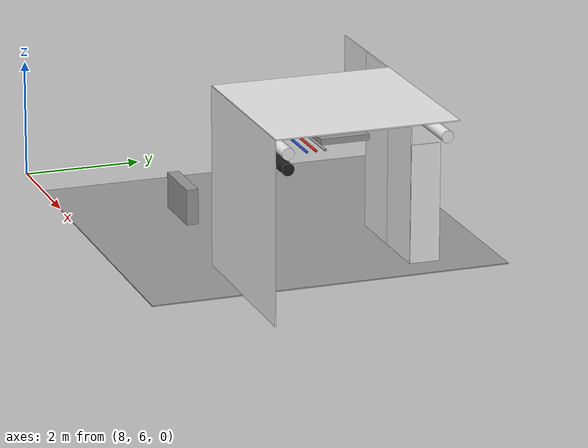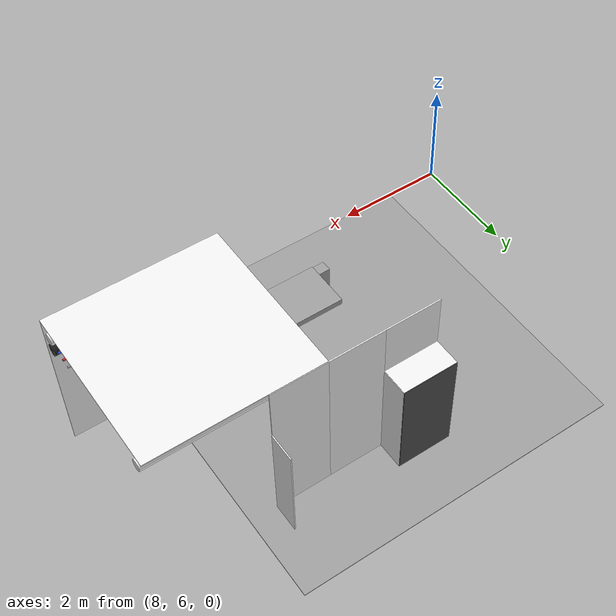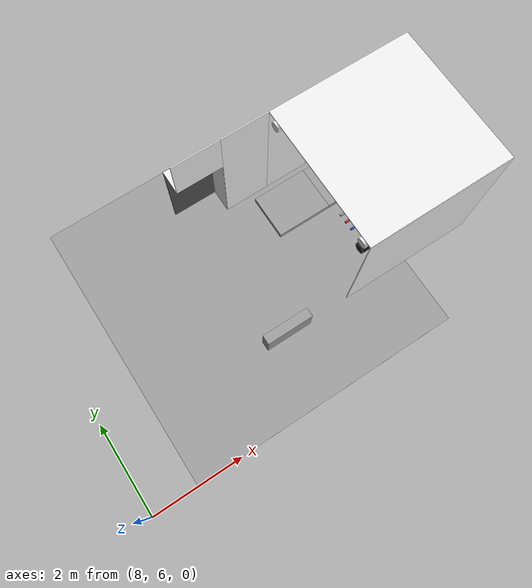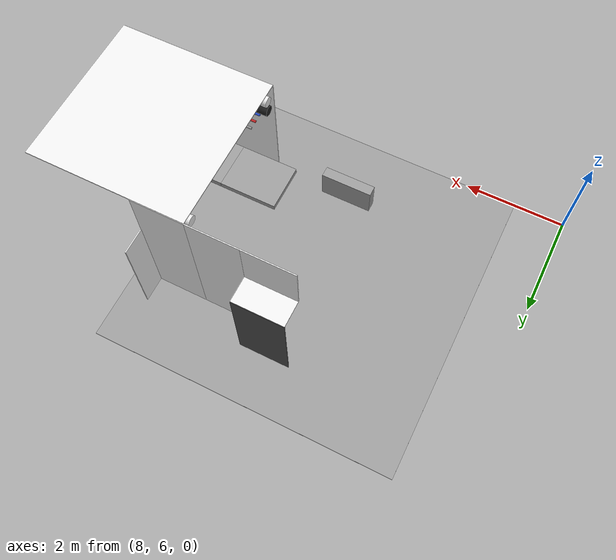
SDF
<sdf version="1.6">
 <world name="default">
  <model name="ceiling_1_4_3_2_1">
   <pose>13.0 9.0 2.55 0.0 0.0 -1.57</pose>
   <link name="link_1">
    <visual name="visual">
     <geometry><box><size>0.8 1 0.1</size></box></geometry>
     <material>
      <script><uri>file://media/materials/scripts/gazebo.material</uri><name>Gazebo/Grey</name></script>
     </material>
    </visual>
    <collision name="collision"><geometry><box><size>0.8 1 0.1</size></box></geometry></collision>
   </link>
   <static>1</static>
  </model>
  <model name="wall_bottom_4_3_0_1">
   <static>1</static>
   <pose>12.0 9.0 0.0 0.0 0.0 -1.57</pose>
   <link name="link">
    <collision name="collision"><geometry><box><size>6.0 6.0 0.02</size></box></geometry></collision>
    <visual name="visual">
     <material>
      <script><name>Gazebo/Grey</name><uri>file://media/materials/scripts/gazebo.material</uri></script>
     </material>
     <geometry><box><size>6.0 6.0 0.02</size></box></geometry>
    </visual>
   </link>
  </model>
  <model name="wall_left_front_left_4_3_0_1">
   <static>1</static>
   <pose>13.0 10.5 1.5 0.0 0.0 0.0</pose>
   <link name="link">
    <collision name="collision"><geometry><box><size>1.0 0.02 3.0</size></box></geometry></collision>
    <visual name="visual">
     <material>
      <script><name>Gazebo/White</name><uri>file://media/materials/scripts/gazebo.material</uri></script>
     </material>
     <geometry><box><size>1.0 0.02 3.0</size></box></geometry>
    </visual>
   </link>
  </model>
  <model name="wall_left_front_up_4_3_0_1">
   <static>1</static>
   <pose>12.0 10.5 2.5 0.0 0.0 0.0</pose>
   <link name="link">
    <collision name="collision"><geometry><box><size>1.0 0.02 1.0</size></box></geometry></collision>
    <visual name="visual">
     <material>
      <script><name>Gazebo/White</name><uri>file://media/materials/scripts/gazebo.material</uri></script>
     </material>
     <geometry><box><size>1.0 0.02 1.0</size></box></geometry>
    </visual>
   </link>
  </model>
  <model name="wall_left_inside_back_4_3_0_1">
   <static>1</static>
   <pose>12.0 11.0 1.0 0.0 0.0 0.0</pose>
   <link name="link">
    <collision name="collision"><geometry><box><size>1 0.02 2</size></box></geometry></collision>
    <visual name="visual">
     <material>
      <script><name>Gazebo/DarkGrey</name><uri>file://media/materials/scripts/gazebo.material</uri></script>
     </material>
     <geometry><box><size>1 0.02 2</size></box></geometry>
    </visual>
   </link>
  </model>
  <model name="wall_left_inside_left_4_3_0_1">
   <static>1</static>
   <pose>12.5 10.75 1.0 0.0 0.0 -1.57</pose>
   <link name="link">
    <collision name="collision"><geometry><box><size>0.5 0.02 2</size></box></geometry></collision>
    <visual name="visual">
     <material>
      <script><name>Gazebo/White</name><uri>file://media/materials/scripts/gazebo.material</uri></script>
     </material>
     <geometry><box><size>0.5 0.02 2</size></box></geometry>
    </visual>
   </link>
  </model>
  <model name="wall_left_inside_top_4_3_0_1">
   <static>1</static>
   <pose>12.0 10.75 2.0 1.57 0.0 0.0</pose>
   <link name="link">
    <collision name="collision"><geometry><box><size>1 0.02 0.5</size></box></geometry></collision>
    <visual name="visual">
     <material>
      <script><name>Gazebo/White</name><uri>file://media/materials/scripts/gazebo.material</uri></script>
     </material>
     <geometry><box><size>1 0.02 0.5</size></box></geometry>
    </visual>
   </link>
  </model>
  <model name="panel_4_3_0_1">
   <static>1</static>
   <pose>12.0 7.5 0.66 0.0 0.0 -1.57</pose>
   <link name="link">
    <collision name="collision"><geometry><box><size>0.2 1 0.6</size></box></geometry></collision>
    <visual name="visual">
     <material>
      <script><name>Gazebo/Grey</name><uri>file://media/materials/scripts/gazebo.material</uri></script>
     </material>
     <geometry><box><size>0.2 1 0.6</size></box></geometry>
    </visual>
   </link>
  </model>
  <model name="wall_right_5_3_0_1">
   <static>1</static>
   <pose>15.0 7.5 1.5 0.0 0.0 0.0</pose>
   <link name="link">
    <collision name="collision"><geometry><box><size>3.0 0.02 3.0</size></box></geometry></collision>
    <visual name="visual">
     <material>
      <script><name>Gazebo/White</name><uri>file://media/materials/scripts/gazebo.material</uri></script>
     </material>
     <geometry><box><size>3.0 0.02 3.0</size></box></geometry>
    </visual>
   </link>
  </model>
  <model name="wall_top_5_3_0_1">
   <static>1</static>
   <pose>15.0 9.0 3.0 1.57 0.0 -1.57</pose>
   <link name="link">
    <collision name="collision"><geometry><box><size>3.0 0.02 3.0</size></box></geometry></collision>
    <visual name="visual">
     <material>
      <script><name>Gazebo/White</name><uri>file://media/materials/scripts/gazebo.material</uri></script>
     </material>
     <geometry><box><size>3.0 0.02 3.0</size></box></geometry>
    </visual>
   </link>
  </model>
  <model name="ceiling_1_5_3_0_1">
   <pose>15.0 9.0 2.55 0.0 0.0 -1.57</pose>
   <link name="link_1">
    <visual name="visual">
     <geometry><box><size>0.8 1 0.1</size></box></geometry>
     <material>
      <script><uri>file://media/materials/scripts/gazebo.material</uri><name>Gazebo/Grey</name></script>
     </material>
    </visual>
    <collision name="collision"><geometry><box><size>0.8 1 0.1</size></box></geometry></collision>
   </link>
   <static>1</static>
  </model>
  <model name="ceiling_1_5_3_1_1">
   <pose>14.0 9.0 2.55 0.0 0.0 -1.57</pose>
   <link name="link_1">
    <visual name="visual">
     <geometry><box><size>0.8 1 0.1</size></box></geometry>
     <material>
      <script><uri>file://media/materials/scripts/gazebo.material</uri><name>Gazebo/Grey</name></script>
     </material>
    </visual>
    <collision name="collision"><geometry><box><size>0.8 1 0.1</size></box></geometry></collision>
   </link>
   <static>1</static>
  </model>
  <model name="white_pipe_left_5_3_0_1">
   <static>1</static>
   <pose>15.0 9.0 2.76 0.0 0.0 -1.57</pose>
   <link name="link_0">
    <visual name="visual">
     <pose>-1.3 0 0 1.57 0 0</pose>
     <geometry><cylinder><radius>0.1</radius><length>3.0</length></cylinder></geometry>
     <material>
      <script><uri>file://media/materials/scripts/gazebo.material</uri><name>Gazebo/White</name></script>
     </material>
    </visual>
    <collision name="collision">
     <pose>-1.3 0 0 1.57 0 0</pose>
     <geometry><cylinder><radius>0.1</radius><length>3.0</length></cylinder></geometry>
    </collision>
   </link>
  </model>
  <model name="white_pipe_right_5_3_0_1">
   <static>1</static>
   <pose>15.0 9.0 2.76 0.0 0.0 -1.57</pose>
   <link name="link_0">
    <visual name="visual">
     <pose>1.3 0 0 1.57 0 0</pose>
     <geometry><cylinder><radius>0.1</radius><length>3.0</length></cylinder></geometry>
     <material>
      <script><uri>file://media/materials/scripts/gazebo.material</uri><name>Gazebo/White</name></script>
     </material>
    </visual>
    <collision name="collision">
     <pose>1.3 0 0 1.57 0 0</pose>
     <geometry><cylinder><radius>0.1</radius><length>3.0</length></cylinder></geometry>
    </collision>
   </link>
  </model>
  <model name="black_pipe_right_5_3_0_1">
   <static>1</static>
   <pose>15.0 9.0 2.76 0.0 0.0 -1.57</pose>
   <link name="link_0">
    <visual name="visual">
     <pose>1.3 0 -0.25 1.57 0 0</pose>
     <geometry><cylinder><radius>0.1</radius><length>3.0</length></cylinder></geometry>
     <material>
      <script><uri>file://media/materials/scripts/gazebo.material</uri><name>Gazebo/Black</name></script>
     </material>
    </visual>
    <collision name="collision">
     <pose>1.3 0 -0.25 1.57 0 0</pose>
     <geometry><cylinder><radius>0.1</radius><length>3.0</length></cylinder></geometry>
    </collision>
   </link>
  </model>
  <model name="grey_pipe_right_5_3_0_1">
   <static>1</static>
   <pose>15.0 9.0 2.76 0.0 0.0 -1.57</pose>
   <link name="link_0">
    <visual name="visual">
     <pose>0.7 0 0 1.57 0 0</pose>
     <geometry><cylinder><radius>0.02</radius><length>3.0</length></cylinder></geometry>
     <material>
      <script><uri>file://media/materials/scripts/gazebo.material</uri><name>Gazebo/Grey</name></script>
     </material>
    </visual>
    <collision name="collision">
     <pose>0.7 0 0 1.57 0 0</pose>
     <geometry><cylinder><radius>0.02</radius><length>3.0</length></cylinder></geometry>
    </collision>
   </link>
  </model>
  <model name="red_pipe_right_5_3_0_1">
   <static>1</static>
   <pose>15.0 9.0 2.76 0.0 0.0 -1.57</pose>
   <link name="link_0">
    <visual name="visual">
     <pose>0.85 0 0 1.57 0 0</pose>
     <geometry><cylinder><radius>0.02</radius><length>3.0</length></cylinder></geometry>
     <material>
      <script><uri>file://media/materials/scripts/gazebo.material</uri><name>Gazebo/Red</name></script>
     </material>
    </visual>
    <collision name="collision">
     <pose>0.85 0 0 1.57 0 0</pose>
     <geometry><cylinder><radius>0.02</radius><length>3.0</length></cylinder></geometry>
    </collision>
   </link>
  </model>
  <model name="blue_pipe_right_5_3_0_1">
   <static>1</static>
   <pose>15.0 9.0 2.76 0.0 0.0 -1.57</pose>
   <link name="link_0">
    <visual name="visual">
     <pose>1 0 0 1.57 0 0</pose>
     <geometry><cylinder><radius>0.02</radius><length>3.0</length></cylinder></geometry>
     <material>
      <script><uri>file://media/materials/scripts/gazebo.material</uri><name>Gazebo/Blue</name></script>
     </material>
    </visual>
    <collision name="collision">
     <pose>1 0 0 1.57 0 0</pose>
     <geometry><cylinder><radius>0.02</radius><length>3.0</length></cylinder></geometry>
    </collision>
   </link>
  </model>
  <model name="wall_left_front_right_5_3_0_1">
   <static>1</static>
   <pose>14.0 10.5 1.5 0.0 0.0 0.0</pose>
   <link name="link">
    <collision name="collision"><geometry><box><size>1.0 0.02 3.0</size></box></geometry></collision>
    <visual name="visual">
     <material>
      <script><name>Gazebo/White</name><uri>file://media/materials/scripts/gazebo.material</uri></script>
     </material>
     <geometry><box><size>1.0 0.02 3.0</size></box></geometry>
    </visual>
   </link>
  </model>
  <model name="wall_left_inside_right_5_3_0_1">
   <static>1</static>
   <pose>14.5 10.75 1.0 0.0 0.0 -1.57</pose>
   <link name="link">
    <collision name="collision"><geometry><box><size>0.5 0.02 2</size></box></geometry></collision>
    <visual name="visual">
     <material>
      <script><name>Gazebo/White</name><uri>file://media/materials/scripts/gazebo.material</uri></script>
     </material>
     <geometry><box><size>0.5 0.02 2</size></box></geometry>
    </visual>
   </link>
  </model>
 </world>
</sdf>
